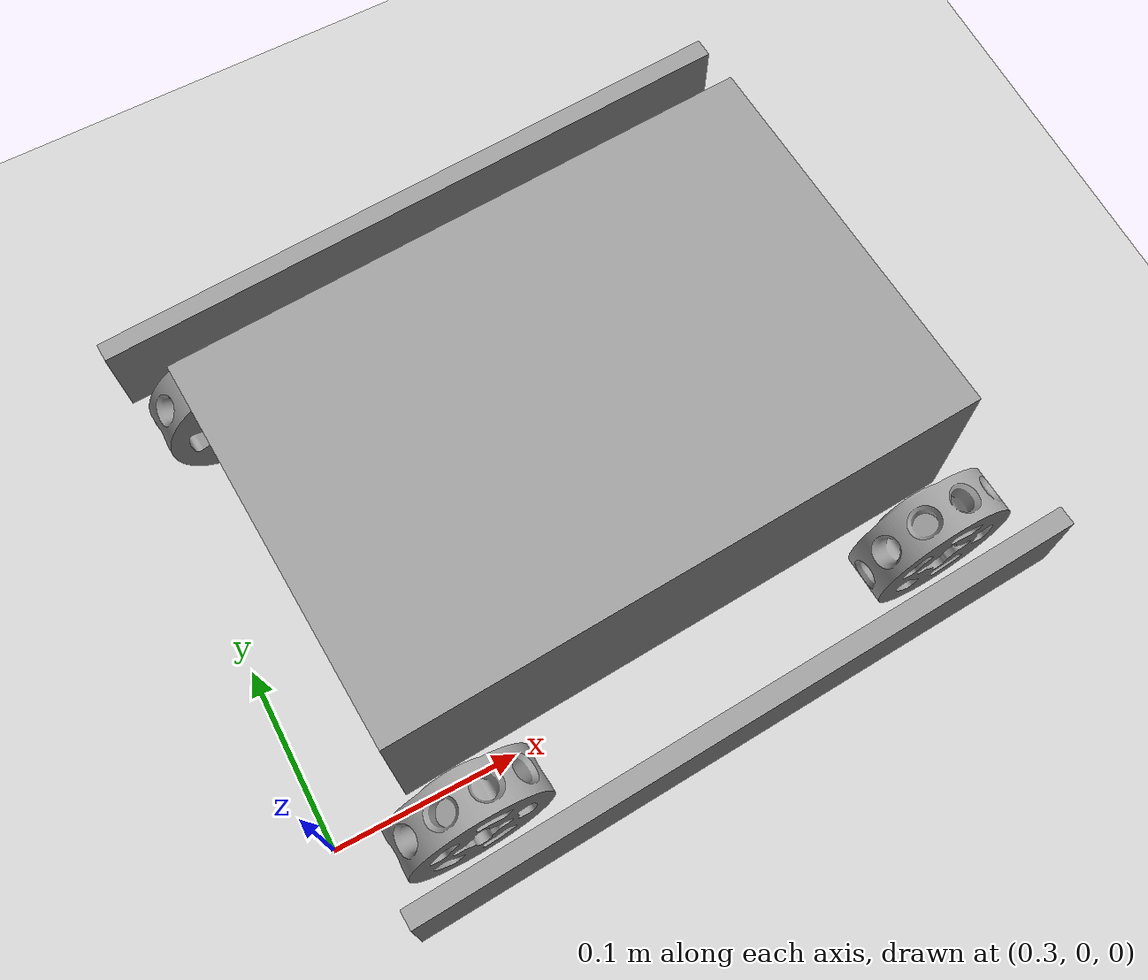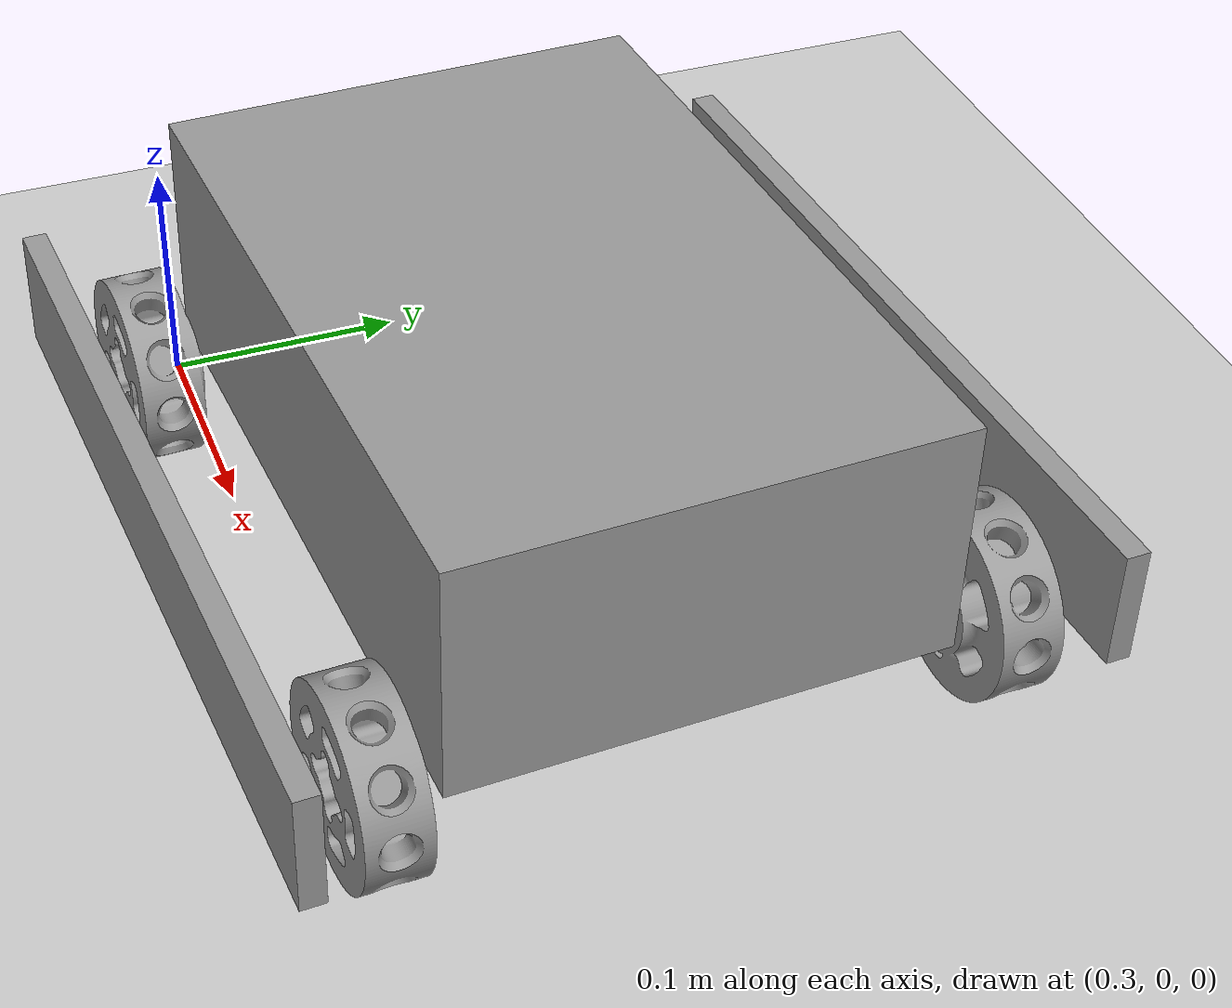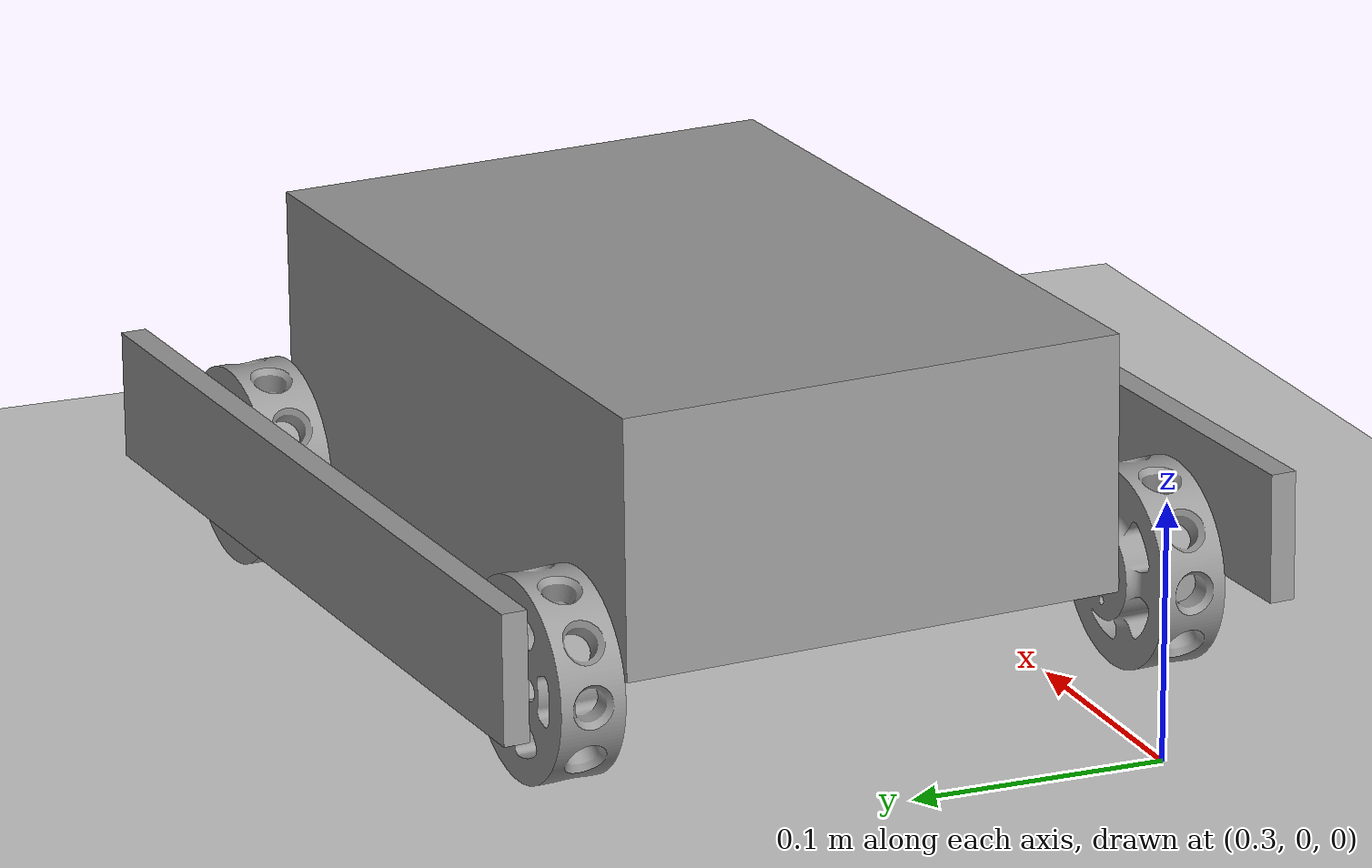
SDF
<sdf version="1.6">
 <world name="default">
  <model name="ground_plane">
   <static>1</static>
   <link name="link">
    <collision name="collision">
     <geometry><plane><normal>0 0 1</normal><size>100 100</size></plane></geometry>
     <surface><friction><ode><mu>100</mu><mu2>50</mu2></ode></friction></surface>
    </collision>
    <visual name="visual">
     <cast_shadows>0</cast_shadows>
     <geometry><plane><normal>0 0 1</normal><size>100 100</size></plane></geometry>
     <material>
      <script><uri>file://media/materials/scripts/gazebo.material</uri><name>Gazebo/Grey</name></script>
     </material>
    </visual>
   </link>
  </model>
  <model name="simple_car">
   <link name="chasis">
    <pose>0 0 0.05 0 -0 0</pose>
    <inertial>
     <mass>1</mass>
     <inertia>
      <ixx>0.166667</ixx>
      <ixy>0</ixy>
      <ixz>0</ixz>
      <iyy>0.166667</iyy>
      <iyz>0</iyz>
      <izz>0.166667</izz>
     </inertia>
    </inertial>
    <visual name="visual">
     <geometry><box><size>0.3 0.2 0.1</size></box></geometry>
     <material>
      <script><name>Gazebo/Grey</name><uri>file://media/materials/scripts/gazebo.material</uri></script>
      <ambient>0.3 0.3 0.3 1</ambient>
      <diffuse>0.7 0.7 0.7 1</diffuse>
      <specular>0.01 0.01 0.01 1</specular>
      <emissive>0 0 0 1</emissive>
      <shader type="vertex"><normal_map>__default__</normal_map></shader>
     </material>
    </visual>
    <collision name="collision"><geometry><box><size>0.3 0.2 0.1</size></box></geometry></collision>
   </link>
   <link name="drum_0">
    <pose>0.13 -0.12 0 1.5707 -0 0</pose>
    <self_collide>1</self_collide>
    <inertial>
     <mass>1</mass>
     <inertia><ixx>1</ixx><ixy>0</ixy><ixz>0</ixz><iyy>1</iyy><iyz>0</iyz><izz>1</izz></inertia>
    </inertial>
    <visual name="visual">
     <pose>-0.0375 -0.0375 -0.034 0 -0 0</pose>
     <geometry>
      <mesh><uri>model://track_drum/meshes/drum.STL</uri><scale>0.001 0.001 0.001</scale></mesh>
     </geometry>
     <material>
      <lighting>1</lighting>
      <script><uri>file://media/materials/scripts/gazebo.material</uri><name>Gazebo/Grey</name></script>
      <ambient>0.3 0.3 0.3 1</ambient>
      <diffuse>0.7 0.7 0.7 1</diffuse>
      <specular>0.01 0.01 0.01 1</specular>
      <emissive>0 0 0 1</emissive>
      <shader type="vertex"><normal_map>__default__</normal_map></shader>
     </material>
    </visual>
    <collision name="collision">
     <max_contacts>20</max_contacts>
     <pose>-0.0375 -0.0375 -0.034 0 -0 0</pose>
     <geometry>
      <mesh><uri>model://track_drum/meshes/drum.STL</uri><scale>0.001 0.001 0.001</scale></mesh>
     </geometry>
     <surface>
      <friction><ode><mu>1</mu><mu2>1</mu2><fdir1>0 0 0</fdir1><slip1>0</slip1><slip2>0</slip2></ode></friction>
      <bounce><restitution_coefficient>0</restitution_coefficient><threshold>1</threshold></bounce>
      <contact>
       <collide_without_contact>0</collide_without_contact>
       <collide_without_contact_bitmask>1</collide_without_contact_bitmask>
       <collide_bitmask>1</collide_bitmask>
       <ode>
        <soft_cfm>0.1</soft_cfm>
        <soft_erp>0.2</soft_erp>
        <kp>1e+13</kp>
        <kd>1</kd>
        <max_vel>0.01</max_vel>
        <min_depth>0</min_depth>
       </ode>
       <bullet>
        <split_impulse>1</split_impulse>
        <split_impulse_penetration_threshold>-0.01</split_impulse_penetration_threshold>
        <soft_cfm>0</soft_cfm>
        <soft_erp>0.2</soft_erp>
        <kp>1e+13</kp>
        <kd>1</kd>
       </bullet>
      </contact>
     </surface>
    </collision>
   </link>
   <link name="drum_1">
    <pose>-0.13 -0.12 0 1.5707 -0 0</pose>
    <self_collide>1</self_collide>
    <inertial>
     <mass>1</mass>
     <inertia><ixx>1</ixx><ixy>0</ixy><ixz>0</ixz><iyy>1</iyy><iyz>0</iyz><izz>1</izz></inertia>
    </inertial>
    <visual name="visual">
     <pose>-0.0375 -0.0375 -0.034 0 -0 0</pose>
     <geometry>
      <mesh><uri>model://track_drum/meshes/drum.STL</uri><scale>0.001 0.001 0.001</scale></mesh>
     </geometry>
     <material>
      <lighting>1</lighting>
      <script><uri>file://media/materials/scripts/gazebo.material</uri><name>Gazebo/Grey</name></script>
      <ambient>0.3 0.3 0.3 1</ambient>
      <diffuse>0.7 0.7 0.7 1</diffuse>
      <specular>0.01 0.01 0.01 1</specular>
      <emissive>0 0 0 1</emissive>
      <shader type="vertex"><normal_map>__default__</normal_map></shader>
     </material>
    </visual>
    <collision name="collision">
     <max_contacts>20</max_contacts>
     <pose>-0.0375 -0.0375 -0.034 0 -0 0</pose>
     <geometry>
      <mesh><uri>model://track_drum/meshes/drum.STL</uri><scale>0.001 0.001 0.001</scale></mesh>
     </geometry>
     <surface>
      <friction><ode><mu>1</mu><mu2>1</mu2><fdir1>0 0 0</fdir1><slip1>0</slip1><slip2>0</slip2></ode></friction>
      <bounce><restitution_coefficient>0</restitution_coefficient><threshold>1</threshold></bounce>
      <contact>
       <collide_without_contact>0</collide_without_contact>
       <collide_without_contact_bitmask>1</collide_without_contact_bitmask>
       <collide_bitmask>1</collide_bitmask>
       <ode>
        <soft_cfm>0.1</soft_cfm>
        <soft_erp>0.2</soft_erp>
        <kp>1e+13</kp>
        <kd>1</kd>
        <max_vel>0.01</max_vel>
        <min_depth>0</min_depth>
       </ode>
       <bullet>
        <split_impulse>1</split_impulse>
        <split_impulse_penetration_threshold>-0.01</split_impulse_penetration_threshold>
        <soft_cfm>0</soft_cfm>
        <soft_erp>0.2</soft_erp>
        <kp>1e+13</kp>
        <kd>1</kd>
       </bullet>
      </contact>
     </surface>
    </collision>
   </link>
   <link name="drum_2">
    <pose>0.13 0.12 0 1.5707 -0 3.14159</pose>
    <self_collide>1</self_collide>
    <inertial>
     <mass>1</mass>
     <inertia><ixx>1</ixx><ixy>0</ixy><ixz>0</ixz><iyy>1</iyy><iyz>0</iyz><izz>1</izz></inertia>
    </inertial>
    <visual name="visual">
     <pose>-0.0375 -0.0375 -0.034 0 -0 0</pose>
     <geometry>
      <mesh><uri>model://track_drum/meshes/drum.STL</uri><scale>0.001 0.001 0.001</scale></mesh>
     </geometry>
     <material>
      <lighting>1</lighting>
      <script><uri>file://media/materials/scripts/gazebo.material</uri><name>Gazebo/Grey</name></script>
      <ambient>0.3 0.3 0.3 1</ambient>
      <diffuse>0.7 0.7 0.7 1</diffuse>
      <specular>0.01 0.01 0.01 1</specular>
      <emissive>0 0 0 1</emissive>
      <shader type="vertex"><normal_map>__default__</normal_map></shader>
     </material>
    </visual>
    <collision name="collision">
     <max_contacts>20</max_contacts>
     <pose>-0.0375 -0.0375 -0.034 0 -0 0</pose>
     <geometry>
      <mesh><uri>model://track_drum/meshes/drum.STL</uri><scale>0.001 0.001 0.001</scale></mesh>
     </geometry>
     <surface>
      <friction><ode><mu>1</mu><mu2>1</mu2><fdir1>0 0 0</fdir1><slip1>0</slip1><slip2>0</slip2></ode></friction>
      <bounce><restitution_coefficient>0</restitution_coefficient><threshold>1</threshold></bounce>
      <contact>
       <collide_without_contact>0</collide_without_contact>
       <collide_without_contact_bitmask>1</collide_without_contact_bitmask>
       <collide_bitmask>1</collide_bitmask>
       <ode>
        <soft_cfm>0.1</soft_cfm>
        <soft_erp>0.2</soft_erp>
        <kp>1e+13</kp>
        <kd>1</kd>
        <max_vel>0.01</max_vel>
        <min_depth>0</min_depth>
       </ode>
       <bullet>
        <split_impulse>1</split_impulse>
        <split_impulse_penetration_threshold>-0.01</split_impulse_penetration_threshold>
        <soft_cfm>0</soft_cfm>
        <soft_erp>0.2</soft_erp>
        <kp>1e+13</kp>
        <kd>1</kd>
       </bullet>
      </contact>
     </surface>
    </collision>
   </link>
   <link name="drum_3">
    <pose>-0.13 0.12 0 1.5707 -0 3.14159</pose>
    <self_collide>1</self_collide>
    <inertial>
     <mass>1</mass>
     <inertia><ixx>1</ixx><ixy>0</ixy><ixz>0</ixz><iyy>1</iyy><iyz>0</iyz><izz>1</izz></inertia>
    </inertial>
    <visual name="visual">
     <pose>-0.0375 -0.0375 -0.034 0 -0 0</pose>
     <geometry>
      <mesh><uri>model://track_drum/meshes/drum.STL</uri><scale>0.001 0.001 0.001</scale></mesh>
     </geometry>
     <material>
      <lighting>1</lighting>
      <script><uri>file://media/materials/scripts/gazebo.material</uri><name>Gazebo/Grey</name></script>
      <ambient>0.3 0.3 0.3 1</ambient>
      <diffuse>0.7 0.7 0.7 1</diffuse>
      <specular>0.01 0.01 0.01 1</specular>
      <emissive>0 0 0 1</emissive>
      <shader type="vertex"><normal_map>__default__</normal_map></shader>
     </material>
    </visual>
    <collision name="collision">
     <max_contacts>20</max_contacts>
     <pose>-0.0375 -0.0375 -0.034 0 -0 0</pose>
     <geometry>
      <mesh><uri>model://track_drum/meshes/drum.STL</uri><scale>0.001 0.001 0.001</scale></mesh>
     </geometry>
     <surface>
      <friction><ode><mu>1</mu><mu2>1</mu2><fdir1>0 0 0</fdir1><slip1>0</slip1><slip2>0</slip2></ode></friction>
      <bounce><restitution_coefficient>0</restitution_coefficient><threshold>1</threshold></bounce>
      <contact>
       <collide_without_contact>0</collide_without_contact>
       <collide_without_contact_bitmask>1</collide_without_contact_bitmask>
       <collide_bitmask>1</collide_bitmask>
       <ode>
        <soft_cfm>0.1</soft_cfm>
        <soft_erp>0.2</soft_erp>
        <kp>1e+13</kp>
        <kd>1</kd>
        <max_vel>0.01</max_vel>
        <min_depth>0</min_depth>
       </ode>
       <bullet>
        <split_impulse>1</split_impulse>
        <split_impulse_penetration_threshold>-0.01</split_impulse_penetration_threshold>
        <soft_cfm>0</soft_cfm>
        <soft_erp>0.2</soft_erp>
        <kp>1e+13</kp>
        <kd>1</kd>
       </bullet>
      </contact>
     </surface>
    </collision>
   </link>
   <link name="left_block">
    <pose>0 -0.155 0.02 0 -0 0</pose>
    <inertial>
     <mass>1</mass>
     <inertia>
      <ixx>0.166667</ixx>
      <ixy>0</ixy>
      <ixz>0</ixz>
      <iyy>0.166667</iyy>
      <iyz>0</iyz>
      <izz>0.166667</izz>
     </inertia>
    </inertial>
    <visual name="visual">
     <geometry><box><size>0.35 0.01 0.05</size></box></geometry>
     <material>
      <script><name>Gazebo/Grey</name><uri>file://media/materials/scripts/gazebo.material</uri></script>
      <ambient>0.3 0.3 0.3 1</ambient>
      <diffuse>0.7 0.7 0.7 1</diffuse>
      <specular>0.01 0.01 0.01 1</specular>
      <emissive>0 0 0 1</emissive>
      <shader type="vertex"><normal_map>__default__</normal_map></shader>
     </material>
    </visual>
    <collision name="collision"><geometry><box><size>0.35 0.01 0.05</size></box></geometry></collision>
   </link>
   <link name="right_block">
    <pose>0 0.155 0.02 0 -0 0</pose>
    <inertial>
     <mass>1</mass>
     <inertia>
      <ixx>0.166667</ixx>
      <ixy>0</ixy>
      <ixz>0</ixz>
      <iyy>0.166667</iyy>
      <iyz>0</iyz>
      <izz>0.166667</izz>
     </inertia>
    </inertial>
    <visual name="visual">
     <geometry><box><size>0.35 0.01 0.05</size></box></geometry>
     <material>
      <script><name>Gazebo/Grey</name><uri>file://media/materials/scripts/gazebo.material</uri></script>
      <ambient>0.3 0.3 0.3 1</ambient>
      <diffuse>0.7 0.7 0.7 1</diffuse>
      <specular>0.01 0.01 0.01 1</specular>
      <emissive>0 0 0 1</emissive>
      <shader type="vertex"><normal_map>__default__</normal_map></shader>
     </material>
    </visual>
    <collision name="collision"><geometry><box><size>0.35 0.01 0.05</size></box></geometry></collision>
   </link>
   <joint name="left_block_joint" type="fixed">
    <child>left_block</child>
    <parent>chasis</parent>
    <axis>
     <xyz>0 0 1</xyz>
     <use_parent_model_frame>0</use_parent_model_frame>
     <limit><lower>-1e+16</lower><upper>1e+16</upper></limit>
    </axis>
   </joint>
   <joint name="right_block_joint" type="fixed">
    <child>right_block</child>
    <parent>chasis</parent>
    <axis>
     <xyz>0 0 1</xyz>
     <use_parent_model_frame>0</use_parent_model_frame>
     <limit><lower>-1e+16</lower><upper>1e+16</upper></limit>
    </axis>
   </joint>
   <joint name="joint_0" type="revolute">
    <pose>0 0 -0.015 0 -0 0</pose>
    <child>drum_0</child>
    <parent>chasis</parent>
    <axis>
     <xyz>0 0 1</xyz>
     <use_parent_model_frame>0</use_parent_model_frame>
     <limit><lower>-1e+16</lower><upper>1e+16</upper></limit>
     <dynamics><spring_reference>0</spring_reference><spring_stiffness>0</spring_stiffness></dynamics>
    </axis>
   </joint>
   <joint name="joint_1" type="revolute">
    <pose>0 0 -0.015 0 -0 0</pose>
    <child>drum_1</child>
    <parent>chasis</parent>
    <axis>
     <xyz>0 0 1</xyz>
     <use_parent_model_frame>0</use_parent_model_frame>
     <limit><lower>-1e+16</lower><upper>1e+16</upper></limit>
     <dynamics><spring_reference>0</spring_reference><spring_stiffness>0</spring_stiffness></dynamics>
    </axis>
   </joint>
   <joint name="joint_2" type="revolute">
    <pose>0 0 -0.015 0 -0 0</pose>
    <child>drum_2</child>
    <parent>chasis</parent>
    <axis>
     <xyz>0 0 1</xyz>
     <use_parent_model_frame>0</use_parent_model_frame>
     <limit><lower>-1e+16</lower><upper>1e+16</upper></limit>
     <dynamics><spring_reference>0</spring_reference><spring_stiffness>0</spring_stiffness></dynamics>
    </axis>
   </joint>
   <joint name="joint_3" type="revolute">
    <pose>0 0 -0.015 0 -0 0</pose>
    <child>drum_3</child>
    <parent>chasis</parent>
    <axis>
     <xyz>0 0 1</xyz>
     <use_parent_model_frame>0</use_parent_model_frame>
     <limit><lower>-1e+16</lower><upper>1e+16</upper></limit>
     <dynamics><spring_reference>0</spring_reference><spring_stiffness>0</spring_stiffness></dynamics>
    </axis>
   </joint>
   <static>0</static>
   <pose>0.487877 0.106161 0.049283 -0.013098 0.000921 0.056337</pose>
  </model>
 </world>
</sdf>
